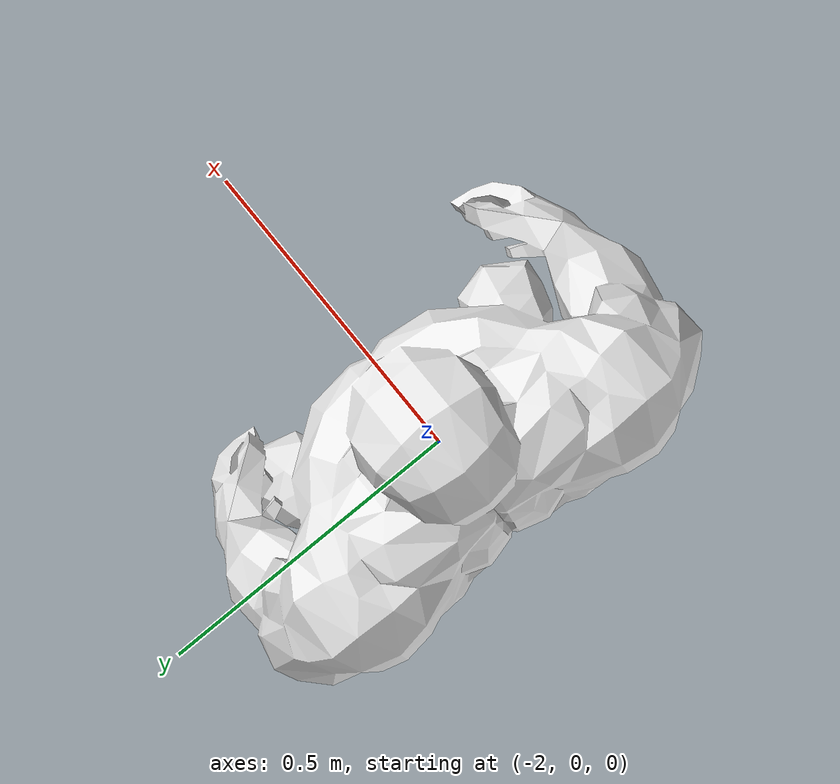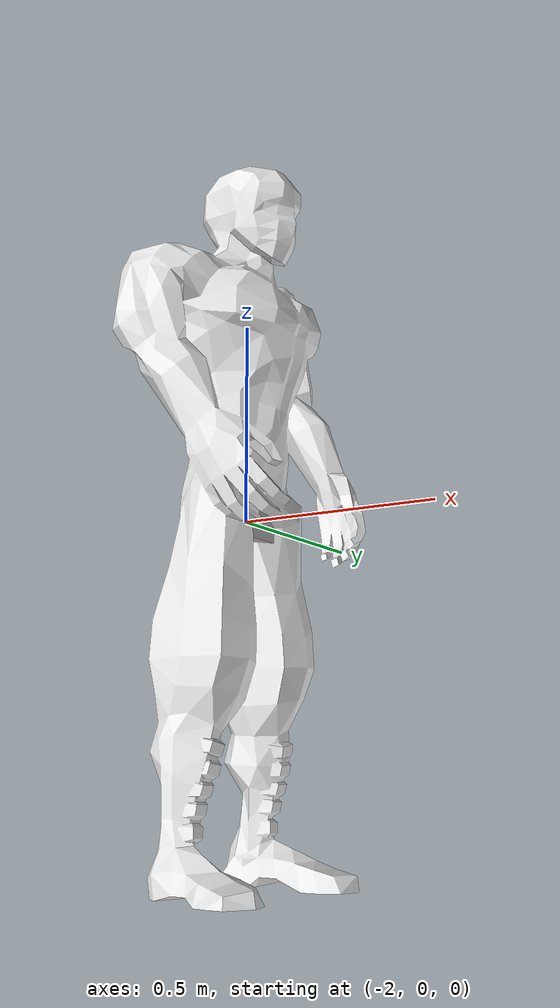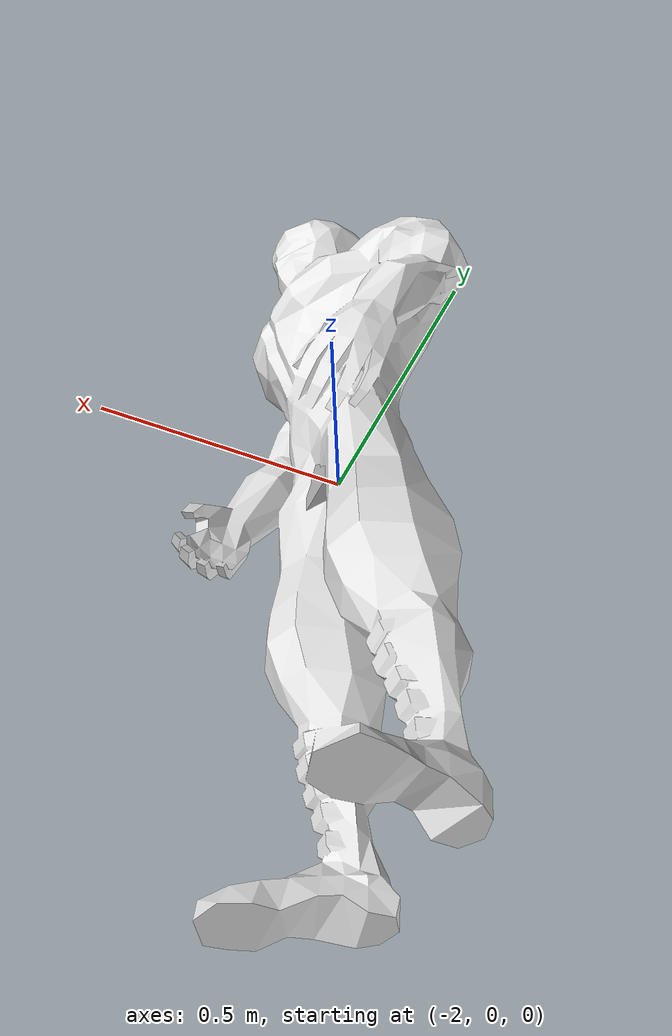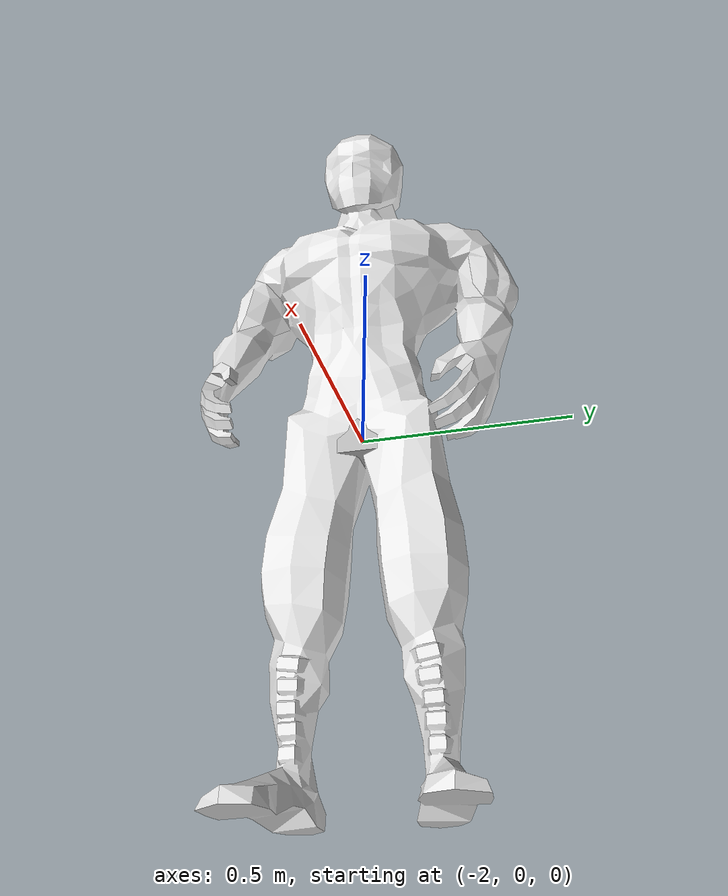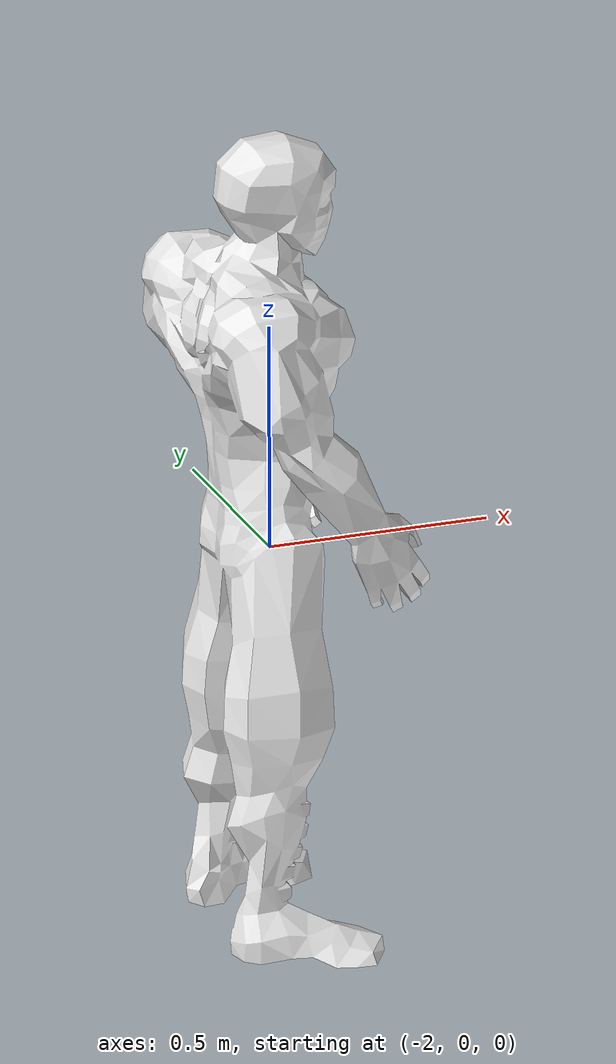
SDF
<?xml version='1.0'?>
<sdf version='1.6'>
  <model name="human">
    <pose>-2 0 0 0 0 0</pose>
    <link name="human_link">
      <inertial>
        <mass>1.0</mass>
        <inertia> <!-- inertias are tricky to compute -->
          <!-- http://gazebosim.org/tutorials?tut=inertia&cat=build_robot -->
          <ixx>0.083</ixx>       <!-- for a box: ixx = 0.083 * mass * (y*y + z*z) -->
          <ixy>0.0</ixy>         <!-- for a box: ixy = 0 -->
          <ixz>0.0</ixz>         <!-- for a box: ixz = 0 -->
          <iyy>0.083</iyy>       <!-- for a box: iyy = 0.083 * mass * (x*x + z*z) -->
          <iyz>0.0</iyz>         <!-- for a box: iyz = 0 -->
          <izz>0.083</izz>       <!-- for a box: izz = 0.083 * mass * (x*x + y*y) -->
        </inertia>
      </inertial>
      <collision name="collision">
        <geometry>
          <box>
            <size>0.4 0.4 1.8</size>
          </box>
        </geometry>
      </collision>
      <visual name="visual_human">
	<pose>0 0 -0.9 0 0 0</pose>
        <geometry>
          <mesh>
            <uri>model://human/meshes/human.dae</uri>
          </mesh>
        </geometry>
	<material>
          <script>
            <name>Gazebo/White</name>
          </script>
        </material>
      </visual>

    </link>

    <!-- publish ground truth position -->
    <plugin name="ground_truth" filename="libgazebo_ros_p3d.so">
      <frameName>map</frameName>
      <bodyName>human_link</bodyName>
      <topicName>human/ground_truth</topicName>
      <updateRate>30.0</updateRate>
    </plugin>

  <!-- root link, on the ground just below the model origin -->
  <link name="base_footprint">
   <visual name="visual">
      <pose>0 0 0 0 0 0</pose>
      <geometry>
          <box>
            <size>0.1 0.1 0.1</size>
          </box>
        </geometry>
    </visual>
  </link>

  <joint name="base_link_joint" type="fixed">
    <pose>0 0 0 0 0 0</pose>
    <parent>base_footprint</parent>
    <child>human_link</child>
  </joint>

    <!-- move human -->
    <plugin name="object_controller" filename="libgazebo_ros_planar_move.so">
      <commandTopic>cmd_vel</commandTopic>
      <odometryTopic>odom</odometryTopic>
      <odometryFrame>odom</odometryFrame>
      <odometryRate>20.0</odometryRate>
      <robotBaseFrame>base_footprint</robotBaseFrame>
    </plugin>

  </model>
</sdf>
